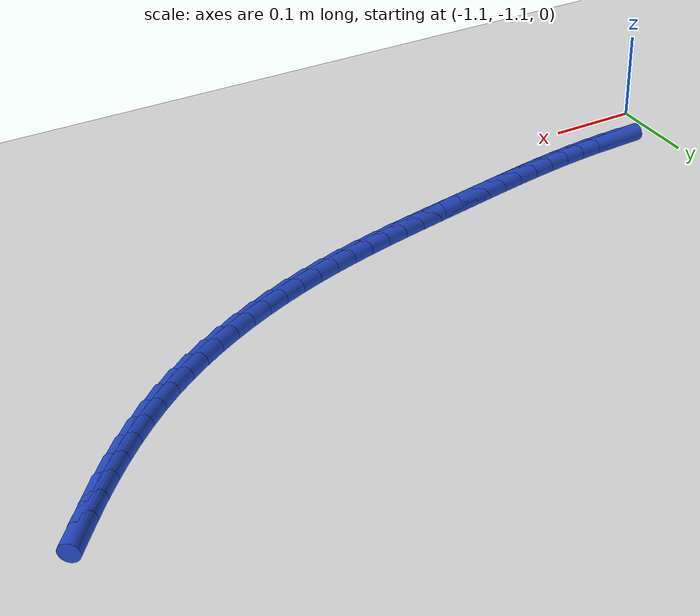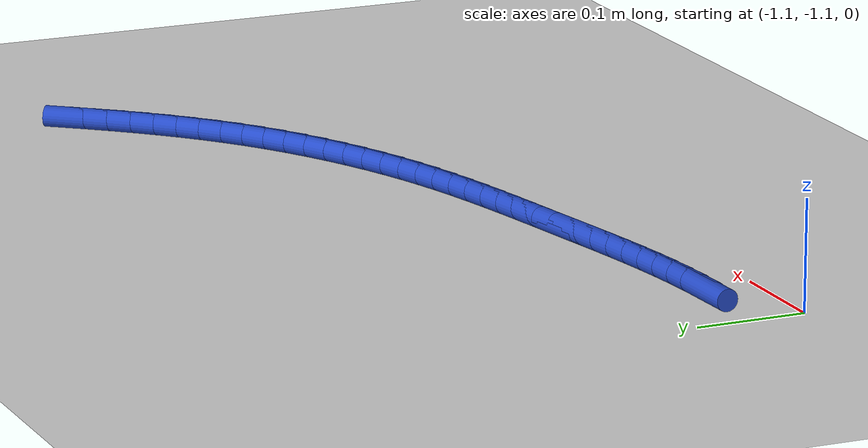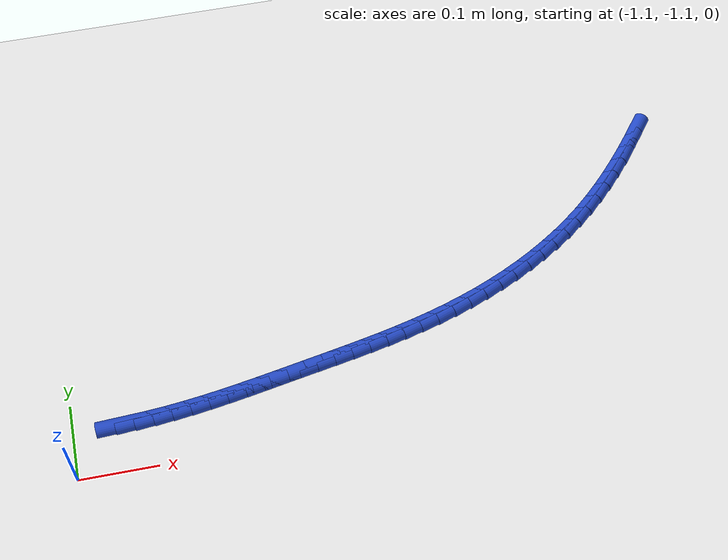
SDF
<sdf version="1.6">
 <world name="default">
  <model name="ground_plane">
   <static>1</static>
   <link name="link">
    <collision name="collision">
     <geometry><plane><normal>0 0 1</normal><size>100 100</size></plane></geometry>
     <surface><friction><ode><mu>100</mu><mu2>50</mu2></ode></friction></surface>
    </collision>
    <visual name="visual">
     <cast_shadows>0</cast_shadows>
     <geometry><plane><normal>0 0 1</normal><size>100 100</size></plane></geometry>
     <material>
      <script><uri>file://media/materials/scripts/gazebo.material</uri><name>Gazebo/WhiteGlow</name></script>
     </material>
    </visual>
   </link>
  </model>
  <model name="line">
   <link name="link_211">
    <pose>-1.030651550146821 -1.0408920136922781 0.01 0 1.57 0.047905553019697705</pose>
    <collision name="collision">
     <geometry><cylinder><radius>0.01</radius><length>0.08</length></cylinder></geometry>
    </collision>
    <visual name="visual">
     <material>
      <script><name>Gazebo/Blue</name><uri>file://media/materials/scripts/gazebo.material</uri></script>
     </material>
     <geometry><cylinder><radius>0.01</radius><length>0.08</length></cylinder></geometry>
    </visual>
   </link>
   <link name="link_212">
    <pose>-1.0069416664859214 -1.0397553089132185 0.01 0 1.57 0.07796293950068937</pose>
    <collision name="collision">
     <geometry><cylinder><radius>0.01</radius><length>0.08</length></cylinder></geometry>
    </collision>
    <visual name="visual">
     <material>
      <script><name>Gazebo/Blue</name><uri>file://media/materials/scripts/gazebo.material</uri></script>
     </material>
     <geometry><cylinder><radius>0.01</radius><length>0.08</length></cylinder></geometry>
    </visual>
   </link>
   <link name="link_213">
    <pose>-0.983330347743076 -1.0379107623968293 0.01 0 1.57 0.10446137820107307</pose>
    <collision name="collision">
     <geometry><cylinder><radius>0.01</radius><length>0.08</length></cylinder></geometry>
    </collision>
    <visual name="visual">
     <material>
      <script><name>Gazebo/Blue</name><uri>file://media/materials/scripts/gazebo.material</uri></script>
     </material>
     <geometry><cylinder><radius>0.01</radius><length>0.08</length></cylinder></geometry>
    </visual>
   </link>
   <link name="link_214">
    <pose>-0.9598059380930287 -1.0354443924530945 0.01 0 1.57 0.12733428286961596</pose>
    <collision name="collision">
     <geometry><cylinder><radius>0.01</radius><length>0.08</length></cylinder></geometry>
    </collision>
    <visual name="visual">
     <material>
      <script><name>Gazebo/Blue</name><uri>file://media/materials/scripts/gazebo.material</uri></script>
     </material>
     <geometry><cylinder><radius>0.01</radius><length>0.08</length></cylinder></geometry>
    </visual>
   </link>
   <link name="link_215">
    <pose>-0.9363567523364229 -1.0324422641124646 0.01 0 1.57 0.1465461303245199</pose>
    <collision name="collision">
     <geometry><cylinder><radius>0.01</radius><length>0.08</length></cylinder></geometry>
    </collision>
    <visual name="visual">
     <material>
      <script><name>Gazebo/Blue</name><uri>file://media/materials/scripts/gazebo.material</uri></script>
     </material>
     <geometry><cylinder><radius>0.01</radius><length>0.08</length></cylinder></geometry>
    </visual>
   </link>
   <link name="link_216">
    <pose>-0.9129711052739015 -1.0289904424053906 0.01 0 1.57 0.16208166718075417</pose>
    <collision name="collision">
     <geometry><cylinder><radius>0.01</radius><length>0.08</length></cylinder></geometry>
    </collision>
    <visual name="visual">
     <material>
      <script><name>Gazebo/Blue</name><uri>file://media/materials/scripts/gazebo.material</uri></script>
     </material>
     <geometry><cylinder><radius>0.01</radius><length>0.08</length></cylinder></geometry>
    </visual>
   </link>
   <link name="link_217">
    <pose>-0.8896373117061067 -1.0251749923623232 0.01 0 1.57 0.17393825248853756</pose>
    <collision name="collision">
     <geometry><cylinder><radius>0.01</radius><length>0.08</length></cylinder></geometry>
    </collision>
    <visual name="visual">
     <material>
      <script><name>Gazebo/Blue</name><uri>file://media/materials/scripts/gazebo.material</uri></script>
     </material>
     <geometry><cylinder><radius>0.01</radius><length>0.08</length></cylinder></geometry>
    </visual>
   </link>
   <link name="link_218">
    <pose>-0.8663436864336842 -1.021081979013714 0.01 0 1.57 0.18211956838389537</pose>
    <collision name="collision">
     <geometry><cylinder><radius>0.01</radius><length>0.08</length></cylinder></geometry>
    </collision>
    <visual name="visual">
     <material>
      <script><name>Gazebo/Blue</name><uri>file://media/materials/scripts/gazebo.material</uri></script>
     </material>
     <geometry><cylinder><radius>0.01</radius><length>0.08</length></cylinder></geometry>
    </visual>
   </link>
   <link name="link_219">
    <pose>-0.843078544257275 -1.0167974673900124 0.01 0 1.57 0.1866308094610063</pose>
    <collision name="collision">
     <geometry><cylinder><radius>0.01</radius><length>0.08</length></cylinder></geometry>
    </collision>
    <visual name="visual">
     <material>
      <script><name>Gazebo/Blue</name><uri>file://media/materials/scripts/gazebo.material</uri></script>
     </material>
     <geometry><cylinder><radius>0.01</radius><length>0.08</length></cylinder></geometry>
    </visual>
   </link>
   <link name="link_220">
    <pose>-0.8198301999775233 -1.0124075225216704 0.01 0 1.57 0.1874969913299129</pose>
    <collision name="collision">
     <geometry><cylinder><radius>0.01</radius><length>0.08</length></cylinder></geometry>
    </collision>
    <visual name="visual">
     <material>
      <script><name>Gazebo/Blue</name><uri>file://media/materials/scripts/gazebo.material</uri></script>
     </material>
     <geometry><cylinder><radius>0.01</radius><length>0.08</length></cylinder></geometry>
    </visual>
   </link>
   <link name="link_221">
    <pose>-0.7965870553970028 -1.0079977054399025 0.01 0 1.57 0.18717234562713503</pose>
    <collision name="collision">
     <geometry><cylinder><radius>0.01</radius><length>0.08</length></cylinder></geometry>
    </collision>
    <visual name="visual">
     <material>
      <script><name>Gazebo/Blue</name><uri>file://media/materials/scripts/gazebo.material</uri></script>
     </material>
     <geometry><cylinder><radius>0.01</radius><length>0.08</length></cylinder></geometry>
    </visual>
   </link>
   <link name="link_222">
    <pose>-0.7733473886461586 -1.0035963639436254 0.01 0 1.57 0.1903394806207587</pose>
    <collision name="collision">
     <geometry><cylinder><radius>0.01</radius><length>0.08</length></cylinder></geometry>
    </collision>
    <visual name="visual">
     <material>
      <script><name>Gazebo/Blue</name><uri>file://media/materials/scripts/gazebo.material</uri></script>
     </material>
     <geometry><cylinder><radius>0.01</radius><length>0.08</length></cylinder></geometry>
    </visual>
   </link>
   <link name="link_223">
    <pose>-0.7501283186632235 -0.9991227016714137 0.01 0 1.57 0.19752834843402223</pose>
    <collision name="collision">
     <geometry><cylinder><radius>0.01</radius><length>0.08</length></cylinder></geometry>
    </collision>
    <visual name="visual">
     <material>
      <script><name>Gazebo/Blue</name><uri>file://media/materials/scripts/gazebo.material</uri></script>
     </material>
     <geometry><cylinder><radius>0.01</radius><length>0.08</length></cylinder></geometry>
    </visual>
   </link>
   <link name="link_224">
    <pose>-0.7269490823003579 -0.9944836532583096 0.01 0 1.57 0.20874239784354984</pose>
    <collision name="collision">
     <geometry><cylinder><radius>0.01</radius><length>0.08</length></cylinder></geometry>
    </collision>
    <visual name="visual">
     <material>
      <script><name>Gazebo/Blue</name><uri>file://media/materials/scripts/gazebo.material</uri></script>
     </material>
     <geometry><cylinder><radius>0.01</radius><length>0.08</length></cylinder></geometry>
    </visual>
   </link>
   <link name="link_225">
    <pose>-0.7038289164097228 -0.9895861533393554 0.01 0 1.57 0.2239812779854046</pose>
    <collision name="collision">
     <geometry><cylinder><radius>0.01</radius><length>0.08</length></cylinder></geometry>
    </collision>
    <visual name="visual">
     <material>
      <script><name>Gazebo/Blue</name><uri>file://media/materials/scripts/gazebo.material</uri></script>
     </material>
     <geometry><cylinder><radius>0.01</radius><length>0.08</length></cylinder></geometry>
    </visual>
   </link>
   <link name="link_226">
    <pose>-0.6807870578434777 -0.9843371365495934 0.01 0 1.57 0.24323539214914627</pose>
    <collision name="collision">
     <geometry><cylinder><radius>0.01</radius><length>0.08</length></cylinder></geometry>
    </collision>
    <visual name="visual">
     <material>
      <script><name>Gazebo/Blue</name><uri>file://media/materials/scripts/gazebo.material</uri></script>
     </material>
     <geometry><cylinder><radius>0.01</radius><length>0.08</length></cylinder></geometry>
    </visual>
   </link>
   <link name="link_227">
    <pose>-0.6578427434537847 -0.9786435375240661 0.01 0 1.57 0.2664785635073465</pose>
    <collision name="collision">
     <geometry><cylinder><radius>0.01</radius><length>0.08</length></cylinder></geometry>
    </collision>
    <visual name="visual">
     <material>
      <script><name>Gazebo/Blue</name><uri>file://media/materials/scripts/gazebo.material</uri></script>
     </material>
     <geometry><cylinder><radius>0.01</radius><length>0.08</length></cylinder></geometry>
    </visual>
   </link>
   <link name="link_228">
    <pose>-0.6350152100928037 -0.9724122908978158 0.01 0 1.57 0.29365900183836885</pose>
    <collision name="collision">
     <geometry><cylinder><radius>0.01</radius><length>0.08</length></cylinder></geometry>
    </collision>
    <visual name="visual">
     <material>
      <script><name>Gazebo/Blue</name><uri>file://media/materials/scripts/gazebo.material</uri></script>
     </material>
     <geometry><cylinder><radius>0.01</radius><length>0.08</length></cylinder></geometry>
    </visual>
   </link>
   <link name="link_229">
    <pose>-0.6123236946126952 -0.9655503313058845 0.01 0 1.57 0.3244057317220828</pose>
    <collision name="collision">
     <geometry><cylinder><radius>0.01</radius><length>0.08</length></cylinder></geometry>
    </collision>
    <visual name="visual">
     <material>
      <script><name>Gazebo/Blue</name><uri>file://media/materials/scripts/gazebo.material</uri></script>
     </material>
     <geometry><cylinder><radius>0.01</radius><length>0.08</length></cylinder></geometry>
    </visual>
   </link>
   <link name="link_230">
    <pose>-0.5897915081785428 -0.9579730690626692 0.01 0 1.57 0.35686705700101445</pose>
    <collision name="collision">
     <geometry><cylinder><radius>0.01</radius><length>0.08</length></cylinder></geometry>
    </collision>
    <visual name="visual">
     <material>
      <script><name>Gazebo/Blue</name><uri>file://media/materials/scripts/gazebo.material</uri></script>
     </material>
     <geometry><cylinder><radius>0.01</radius><length>0.08</length></cylinder></geometry>
    </visual>
   </link>
   <link name="link_231">
    <pose>-0.5674680641367729 -0.9496502141212281 0.01 0 1.57 0.39044622964574466</pose>
    <collision name="collision">
     <geometry><cylinder><radius>0.01</radius><length>0.08</length></cylinder></geometry>
    </collision>
    <visual name="visual">
     <material>
      <script><name>Gazebo/Blue</name><uri>file://media/materials/scripts/gazebo.material</uri></script>
     </material>
     <geometry><cylinder><radius>0.01</radius><length>0.08</length></cylinder></geometry>
    </visual>
   </link>
   <link name="link_232">
    <pose>-0.5454130716043839 -0.9405728944385191 0.01 0 1.57 0.4252833248827394</pose>
    <collision name="collision">
     <geometry><cylinder><radius>0.01</radius><length>0.08</length></cylinder></geometry>
    </collision>
    <visual name="visual">
     <material>
      <script><name>Gazebo/Blue</name><uri>file://media/materials/scripts/gazebo.material</uri></script>
     </material>
     <geometry><cylinder><radius>0.01</radius><length>0.08</length></cylinder></geometry>
    </visual>
   </link>
   <link name="link_233">
    <pose>-0.5236862647669621 -0.9307322901209831 0.01 0 1.57 0.4615183527496326</pose>
    <collision name="collision">
     <geometry><cylinder><radius>0.01</radius><length>0.08</length></cylinder></geometry>
    </collision>
    <visual name="visual">
     <material>
      <script><name>Gazebo/Blue</name><uri>file://media/materials/scripts/gazebo.material</uri></script>
     </material>
     <geometry><cylinder><radius>0.01</radius><length>0.08</length></cylinder></geometry>
    </visual>
   </link>
   <link name="link_234">
    <pose>-0.5023473778100926 -0.9201195812750603 0.01 0 1.57 0.4992882594974911</pose>
    <collision name="collision">
     <geometry><cylinder><radius>0.01</radius><length>0.08</length></cylinder></geometry>
    </collision>
    <visual name="visual">
     <material>
      <script><name>Gazebo/Blue</name><uri>file://media/materials/scripts/gazebo.material</uri></script>
     </material>
     <geometry><cylinder><radius>0.01</radius><length>0.08</length></cylinder></geometry>
    </visual>
   </link>
   <link name="link_235">
    <pose>-0.48145614491936334 -0.908725948007193 0.01 0 1.57 0.5387249320106797</pose>
    <collision name="collision">
     <geometry><cylinder><radius>0.01</radius><length>0.08</length></cylinder></geometry>
    </collision>
    <visual name="visual">
     <material>
      <script><name>Gazebo/Blue</name><uri>file://media/materials/scripts/gazebo.material</uri></script>
     </material>
     <geometry><cylinder><radius>0.01</radius><length>0.08</length></cylinder></geometry>
    </visual>
   </link>
   <link name="link_236">
    <pose>-0.4610723002803598 -0.8965425704238217 0.01 0 1.57 0.5799523568910501</pose>
    <collision name="collision">
     <geometry><cylinder><radius>0.01</radius><length>0.08</length></cylinder></geometry>
    </collision>
    <visual name="visual">
     <material>
      <script><name>Gazebo/Blue</name><uri>file://media/materials/scripts/gazebo.material</uri></script>
     </material>
     <geometry><cylinder><radius>0.01</radius><length>0.08</length></cylinder></geometry>
    </visual>
   </link>
   <link name="link_237">
    <pose>-0.4412555780786679 -0.883560628631387 0.01 0 1.57 0.6230828392203449</pose>
    <collision name="collision">
     <geometry><cylinder><radius>0.01</radius><length>0.08</length></cylinder></geometry>
    </collision>
    <visual name="visual">
     <material>
      <script><name>Gazebo/Blue</name><uri>file://media/materials/scripts/gazebo.material</uri></script>
     </material>
     <geometry><cylinder><radius>0.01</radius><length>0.08</length></cylinder></geometry>
    </visual>
   </link>
   <link name="link_238">
    <pose>-0.42206571249987423 -0.8697713027363303 0.01 0 1.57 0.668179279157461</pose>
    <collision name="collision">
     <geometry><cylinder><radius>0.01</radius><length>0.08</length></cylinder></geometry>
    </collision>
    <visual name="visual">
     <material>
      <script><name>Gazebo/Blue</name><uri>file://media/materials/scripts/gazebo.material</uri></script>
     </material>
     <geometry><cylinder><radius>0.01</radius><length>0.08</length></cylinder></geometry>
    </visual>
   </link>
   <link name="link_239">
    <pose>-0.40356176898713275 -0.8551662342425771 0.01 0 1.57 0.7132412262444059</pose>
    <collision name="collision">
     <geometry><cylinder><radius>0.01</radius><length>0.08</length></cylinder></geometry>
    </collision>
    <visual name="visual">
     <material>
      <script><name>Gazebo/Blue</name><uri>file://media/materials/scripts/gazebo.material</uri></script>
     </material>
     <geometry><cylinder><radius>0.01</radius><length>0.08</length></cylinder></geometry>
    </visual>
   </link>
   <link name="link_240">
    <pose>-0.38576135545717755 -0.839765668190343 0.01 0 1.57 0.7549534996890765</pose>
    <collision name="collision">
     <geometry><cylinder><radius>0.01</radius><length>0.08</length></cylinder></geometry>
    </collision>
    <visual name="visual">
     <material>
      <script><name>Gazebo/Blue</name><uri>file://media/materials/scripts/gazebo.material</uri></script>
     </material>
     <geometry><cylinder><radius>0.01</radius><length>0.08</length></cylinder></geometry>
    </visual>
   </link>
   <link name="link_241">
    <pose>-0.36861704224717656 -0.8236347221659865 0.01 0 1.57 0.792926631275174</pose>
    <collision name="collision">
     <geometry><cylinder><radius>0.01</radius><length>0.08</length></cylinder></geometry>
    </collision>
    <visual name="visual">
     <material>
      <script><name>Gazebo/Blue</name><uri>file://media/materials/scripts/gazebo.material</uri></script>
     </material>
     <geometry><cylinder><radius>0.01</radius><length>0.08</length></cylinder></geometry>
    </visual>
   </link>
   <link name="link_242">
    <pose>-0.35207571308552965 -0.8068424372200547 0.01 0 1.57 0.8271141084403222</pose>
    <collision name="collision">
     <geometry><cylinder><radius>0.01</radius><length>0.08</length></cylinder></geometry>
    </collision>
    <visual name="visual">
     <material>
      <script><name>Gazebo/Blue</name><uri>file://media/materials/scripts/gazebo.material</uri></script>
     </material>
     <geometry><cylinder><radius>0.01</radius><length>0.08</length></cylinder></geometry>
    </visual>
   </link>
   <link name="link_243">
    <pose>-0.33608425170063616 -0.7894578544030939 0.01 0 1.57 0.8575167503223584</pose>
    <collision name="collision">
     <geometry><cylinder><radius>0.01</radius><length>0.08</length></cylinder></geometry>
    </collision>
    <visual name="visual">
     <material>
      <script><name>Gazebo/Blue</name><uri>file://media/materials/scripts/gazebo.material</uri></script>
     </material>
     <geometry><cylinder><radius>0.01</radius><length>0.08</length></cylinder></geometry>
    </visual>
   </link>
   <link name="link_244">
    <pose>-0.3205895418208971 -0.7715500147656527 0.01 0 1.57 0.8841679292440588</pose>
    <collision name="collision">
     <geometry><cylinder><radius>0.01</radius><length>0.08</length></cylinder></geometry>
    </collision>
    <visual name="visual">
     <material>
      <script><name>Gazebo/Blue</name><uri>file://media/materials/scripts/gazebo.material</uri></script>
     </material>
     <geometry><cylinder><radius>0.01</radius><length>0.08</length></cylinder></geometry>
    </visual>
   </link>
   <link name="link_245">
    <pose>-0.3055384671747119 -0.7531879593582773 0.01 0 1.57 0.9071204276851577</pose>
    <collision name="collision">
     <geometry><cylinder><radius>0.01</radius><length>0.08</length></cylinder></geometry>
    </collision>
    <visual name="visual">
     <material>
      <script><name>Gazebo/Blue</name><uri>file://media/materials/scripts/gazebo.material</uri></script>
     </material>
     <geometry><cylinder><radius>0.01</radius><length>0.08</length></cylinder></geometry>
    </visual>
   </link>
  </model>
 </world>
</sdf>
